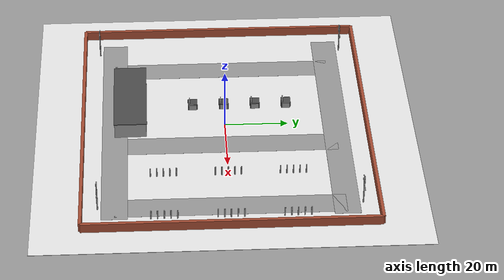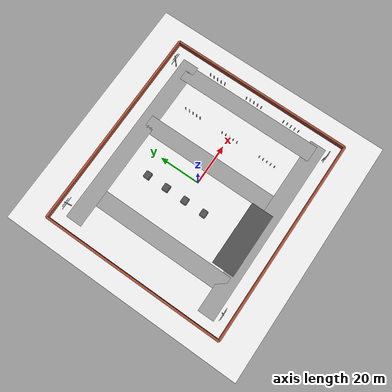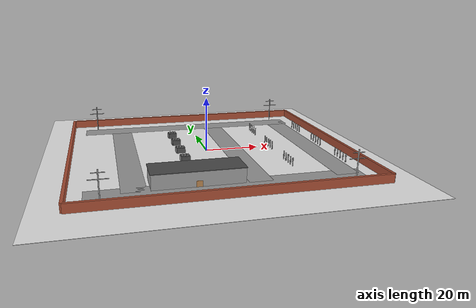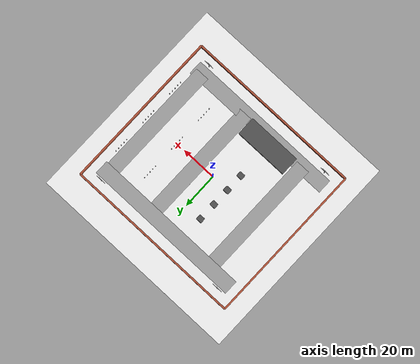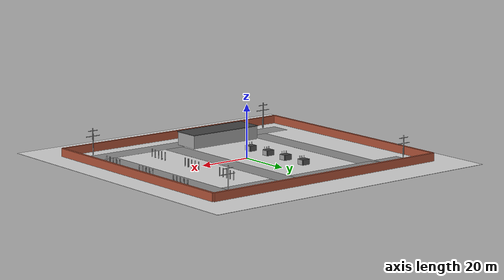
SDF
<?xml version="1.0" ?>
<sdf version="1.6">
  <world name="substation_world">
    <light name="sun_light" type="directional">
      <cast_shadows>true</cast_shadows>
      <pose>0 0 50 0 0 0</pose>
      <diffuse>0.9 0.9 0.9 1</diffuse>
      <specular>0.2 0.2 0.2 1</specular>
      <attenuation>
        <range>1000</range>
        <constant>0.9</constant>
        <linear>0.01</linear>
        <quadratic>0.001</quadratic>
      </attenuation>
      <direction>-0.5 0.1 -0.9</direction>
    </light>

    <model name="base_ground">
      <static>true</static>
      <link name="link">
        <collision name="collision">
          <pose>0 0 -0.05 0 0 0</pose>
          <geometry><box><size>120 120 0.1</size></box></geometry>
        </collision>
        <visual name="visual">
          <pose>0 0 -0.05 0 0 0</pose>
          <geometry><box><size>120 120 0.1</size></box></geometry>
          <material><script><uri>file://media/materials/scripts/gazebo.material</uri><name>Gazebo/White</name></script></material>
        </visual>
      </link>
    </model>

    <!-- ROAD SYSTEM: Visual grey boxes on the ground -->
    <model name="roads">
      <static>true</static>
      <link name="link">
        <visual name="main_road_horizontal">
          <pose>0 -35 0.01 0 0 0</pose>
          <geometry><box><size>90 8 0.01</size></box></geometry>
          <material><script><uri>file://media/materials/scripts/gazebo.material</uri><name>Gazebo/Grey</name></script></material>
        </visual>
        <visual name="road_left_vertical">
          <pose>-30 0 0.01 0 0 0</pose>
          <geometry><box><size>8 70 0.01</size></box></geometry>
          <material><script><uri>file://media/materials/scripts/gazebo.material</uri><name>Gazebo/Grey</name></script></material>
        </visual>
        <visual name="road_middle_vertical">
          <pose>10 0 0.01 0 0 0</pose>
          <geometry><box><size>8 70 0.01</size></box></geometry>
          <material><script><uri>file://media/materials/scripts/gazebo.material</uri><name>Gazebo/Grey</name></script></material>
        </visual>
        <visual name="road_right_vertical">
          <pose>40 0 0.01 0 0 0</pose>
          <geometry><box><size>8 70 0.01</size></box></geometry>
          <material><script><uri>file://media/materials/scripts/gazebo.material</uri><name>Gazebo/Grey</name></script></material>
        </visual>
        <visual name="top_road_horizontal">
          <pose>0 35 0.01 0 0 0</pose>
          <geometry><box><size>90 8 0.01</size></box></geometry>
          <material><script><uri>file://media/materials/scripts/gazebo.material</uri><name>Gazebo/Grey</name></script></material>
        </visual>
      </link>
    </model>

    <!-- PERIMETER WALLS (5 points: boundaries) -->
    <model name="boundary_walls">
      <static>true</static>
      <link name="link">
        <collision name="north_wall"><pose>0 45 1.5 0 0 0</pose><geometry><box><size>100 1 3</size></box></geometry></collision>
        <visual name="north_wall_visual"><pose>0 45 1.5 0 0 0</pose><geometry><box><size>100 1 3</size></box></geometry><material><script><uri>file://media/materials/scripts/gazebo.material</uri><name>Gazebo/Bricks</name></script></material></visual>

        <collision name="south_wall"><pose>0 -45 1.5 0 0 0</pose><geometry><box><size>100 1 3</size></box></geometry></collision>
        <visual name="south_wall_visual"><pose>0 -45 1.5 0 0 0</pose><geometry><box><size>100 1 3</size></box></geometry><material><script><uri>file://media/materials/scripts/gazebo.material</uri><name>Gazebo/Bricks</name></script></material></visual>

        <collision name="east_wall"><pose>50 0 1.5 0 0 0</pose><geometry><box><size>1 90 3</size></box></geometry></collision>
        <visual name="east_wall_visual"><pose>50 0 1.5 0 0 0</pose><geometry><box><size>1 90 3</size></box></geometry><material><script><uri>file://media/materials/scripts/gazebo.material</uri><name>Gazebo/Bricks</name></script></material></visual>

        <collision name="west_wall"><pose>-50 0 1.5 0 0 0</pose><geometry><box><size>1 90 3</size></box></geometry></collision>
        <visual name="west_wall_visual"><pose>-50 0 1.5 0 0 0</pose><geometry><box><size>1 90 3</size></box></geometry><material><script><uri>file://media/materials/scripts/gazebo.material</uri><name>Gazebo/Bricks</name></script></material></visual>
      </link>
    </model>

    <!-- EQUIPMENT PLACEMENT (10 points: Physics vs Visual optimization) -->

    <!-- Main Building at bottom -->
    <include>
      <name>main_office</name>
      <uri>model://main_building</uri>
      <pose>-10 -30 0 0 0 0</pose>
    </include>

    <!-- Transformers in the middle area -->
    <include><name>tf_1</name><uri>model://transformer</uri><pose>-10 0 0 0 0 0</pose></include>
    <include><name>tf_2</name><uri>model://transformer</uri><pose>-10 10 0 0 0 0</pose></include>
    <include><name>tf_3</name><uri>model://transformer</uri><pose>-10 20 0 0 0 0</pose></include>
    <include><name>tf_4</name><uri>model://transformer</uri><pose>-10 -10 0 0 0 0</pose></include>

    <!-- Power Towers -->
    <include><name>tower_nw</name><uri>model://power_tower</uri><pose>-40 40 0 0 0 0</pose></include>
    <include><name>tower_ne</name><uri>model://power_tower</uri><pose>40 40 0 0 0 0</pose></include>
    <include><name>tower_sw</name><uri>model://power_tower</uri><pose>-40 -40 0 0 0 0</pose></include>
    <include><name>tower_se</name><uri>model://power_tower</uri><pose>40 -40 0 0 0 0</pose></include>

    <!-- Rows of Insulators on the right -->
    <include><name>ins_row_1</name><uri>model://insulator_row</uri><pose>25 20 0 0 0 0</pose></include>
    <include><name>ins_row_2</name><uri>model://insulator_row</uri><pose>25 0 0 0 0 0</pose></include>
    <include><name>ins_row_3</name><uri>model://insulator_row</uri><pose>25 -20 0 0 0 0</pose></include>

    <include><name>ins_row_4</name><uri>model://insulator_row</uri><pose>45 20 0 0 0 0</pose></include>
    <include><name>ins_row_5</name><uri>model://insulator_row</uri><pose>45 0 0 0 0 0</pose></include>
    <include><name>ins_row_6</name><uri>model://insulator_row</uri><pose>45 -20 0 0 0 0</pose></include>

    <physics type="ode">
      <real_time_update_rate>1000.0</real_time_update_rate>
      <max_step_size>0.001</max_step_size>
      <real_time_factor>1</real_time_factor>
      <ode>
        <solver>
          <type>quick</type>
          <iters>50</iters>
        </solver>
      </ode>
    </physics>

    <scene>
      <ambient>0.4 0.4 0.4 1</ambient>
      <background>0.7 0.7 0.7 1</background>
      <shadows>true</shadows>
    </scene>

  </world>
</sdf>

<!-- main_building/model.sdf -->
<sdf version="1.6">
  <model name="main_building">
    <static>true</static>
    <link name="link">
      <!-- PHYSICS/COLLISION OPTIMIZATION: Simple Box for collision -->
      <collision name="collision">
        <pose>0 0 2.5 0 0 0</pose>
        <geometry><box><size>30 10 5</size></box></geometry>
      </collision>

      <!-- VISUAL: A simple building look -->
      <visual name="walls">
        <pose>0 0 2.5 0 0 0</pose>
        <geometry><box><size>30 10 5</size></box></geometry>
        <material><script><uri>file://media/materials/scripts/gazebo.material</uri><name>Gazebo/Grey</name></script></material>
      </visual>
      <visual name="roof">
        <pose>0 0 5.1 0 0 0</pose>
        <geometry><box><size>30.5 10.5 0.2</size></box></geometry>
        <material><script><uri>file://media/materials/scripts/gazebo.material</uri><name>Gazebo/DarkGrey</name></script></material>
      </visual>
      <visual name="door">
        <pose>0 -5.01 1 0 0 0</pose>
        <geometry><box><size>2 0.1 2</size></box></geometry>
        <material><script><uri>file://media/materials/scripts/gazebo.material</uri><name>Gazebo/Wood</name></script></material>
      </visual>
    </link>
  </model>
</sdf>

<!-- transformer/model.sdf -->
<sdf version="1.6">
  <model name="transformer">
    <static>true</static>
    <link name="link">
      <!-- PHYSICS/COLLISION OPTIMIZATION: Use a single simple Box for collision -->
      <collision name="collision">
        <pose>0 0 1.5 0 0 0</pose>
        <geometry><box><size>3 3 3</size></box></geometry>
      </collision>

      <!-- VISUAL: Slightly more complex to look like a transformer -->
      <visual name="main_body">
        <pose>0 0 1 0 0 0</pose>
        <geometry><box><size>3 3 2</size></box></geometry>
        <material><script><uri>file://media/materials/scripts/gazebo.material</uri><name>Gazebo/DarkGrey</name></script></material>
      </visual>
      <visual name="radiator_left">
        <pose>-1.6 0 1 0 0 0</pose>
        <geometry><box><size>0.2 2.5 1.8</size></box></geometry>
        <material><script><uri>file://media/materials/scripts/gazebo.material</uri><name>Gazebo/Grey</name></script></material>
      </visual>
      <visual name="radiator_right">
        <pose>1.6 0 1 0 0 0</pose>
        <geometry><box><size>0.2 2.5 1.8</size></box></geometry>
        <material><script><uri>file://media/materials/scripts/gazebo.material</uri><name>Gazebo/Grey</name></script></material>
      </visual>
      <visual name="bushing_1">
        <pose>-1 -1 2.5 0 0 0</pose>
        <geometry><cylinder><radius>0.15</radius><length>1</length></cylinder></geometry>
        <material><script><uri>file://media/materials/scripts/gazebo.material</uri><name>Gazebo/White</name></script></material>
      </visual>
      <visual name="bushing_2">
        <pose>0 -1 2.5 0 0 0</pose>
        <geometry><cylinder><radius>0.15</radius><length>1</length></cylinder></geometry>
        <material><script><uri>file://media/materials/scripts/gazebo.material</uri><name>Gazebo/White</name></script></material>
      </visual>
      <visual name="bushing_3">
        <pose>1 -1 2.5 0 0 0</pose>
        <geometry><cylinder><radius>0.15</radius><length>1</length></cylinder></geometry>
        <material><script><uri>file://media/materials/scripts/gazebo.material</uri><name>Gazebo/White</name></script></material>
      </visual>
    </link>
  </model>
</sdf>

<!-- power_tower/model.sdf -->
<sdf version="1.6">
  <model name="power_tower">
    <static>true</static>
    <link name="link">
      <!-- PHYSICS/COLLISION OPTIMIZATION: Use a single simple Cylinder for collision -->
      <collision name="collision">
        <pose>0 0 5 0 0 0</pose>
        <geometry><cylinder><radius>0.4</radius><length>10</length></cylinder></geometry>
      </collision>

      <!-- VISUAL: A lattice tower look -->
      <visual name="main_post">
        <pose>0 0 5 0 0 0</pose>
        <geometry><cylinder><radius>0.2</radius><length>10</length></cylinder></geometry>
        <material><script><uri>file://media/materials/scripts/gazebo.material</uri><name>Gazebo/Grey</name></script></material>
      </visual>
      <visual name="arm_top">
        <pose>0 0 9 0 1.5708 0</pose>
        <geometry><box><size>0.2 0.2 4</size></box></geometry>
        <material><script><uri>file://media/materials/scripts/gazebo.material</uri><name>Gazebo/Grey</name></script></material>
      </visual>
      <visual name="arm_middle">
        <pose>0 0 7 0 1.5708 0</pose>
        <geometry><box><size>0.2 0.2 6</size></box></geometry>
        <material><script><uri>file://media/materials/scripts/gazebo.material</uri><name>Gazebo/Grey</name></script></material>
      </visual>
    </link>
  </model>
</sdf>

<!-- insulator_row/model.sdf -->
<sdf version="1.6">
  <model name="insulator_row">
    <static>true</static>
    <link name="link">
      <!-- PHYSICS/COLLISION OPTIMIZATION: A single long Box for the entire row -->
      <collision name="collision">
        <pose>0 0 1.5 0 0 0</pose>
        <geometry><box><size>1 10 3</size></box></geometry>
      </collision>

      <!-- VISUAL: A row of insulator posts -->
      <visual name="post_1">
        <pose>0 -4 1.5 0 0 0</pose>
        <geometry><cylinder><radius>0.2</radius><length>3</length></cylinder></geometry>
        <material><script><uri>file://media/materials/scripts/gazebo.material</uri><name>Gazebo/Grey</name></script></material>
      </visual>
      <visual name="post_2">
        <pose>0 -2 1.5 0 0 0</pose>
        <geometry><cylinder><radius>0.2</radius><length>3</length></cylinder></geometry>
        <material><script><uri>file://media/materials/scripts/gazebo.material</uri><name>Gazebo/Grey</name></script></material>
      </visual>
      <visual name="post_3">
        <pose>0 0 1.5 0 0 0</pose>
        <geometry><cylinder><radius>0.2</radius><length>3</length></cylinder></geometry>
        <material><script><uri>file://media/materials/scripts/gazebo.material</uri><name>Gazebo/Grey</name></script></material>
      </visual>
      <visual name="post_4">
        <pose>0 2 1.5 0 0 0</pose>
        <geometry><cylinder><radius>0.2</radius><length>3</length></cylinder></geometry>
        <material><script><uri>file://media/materials/scripts/gazebo.material</uri><name>Gazebo/Grey</name></script></material>
      </visual>
      <visual name="post_5">
        <pose>0 4 1.5 0 0 0</pose>
        <geometry><cylinder><radius>0.2</radius><length>3</length></cylinder></geometry>
        <material><script><uri>file://media/materials/scripts/gazebo.material</uri><name>Gazebo/Grey</name></script></material>
      </visual>
    </link>
  </model>
</sdf>
